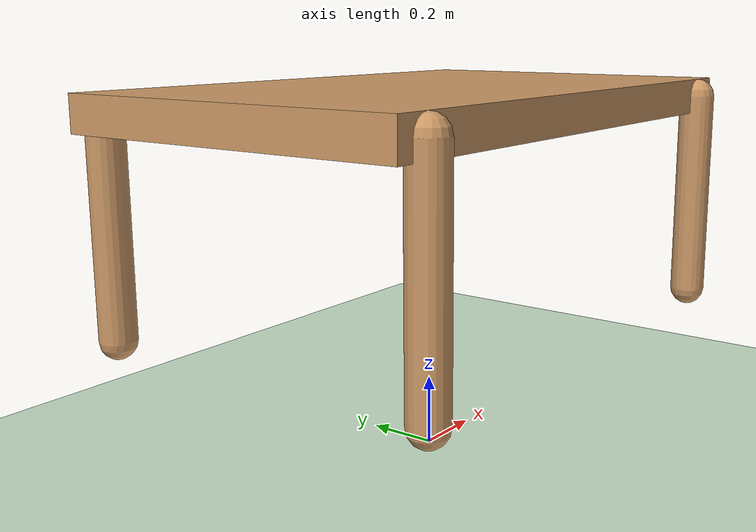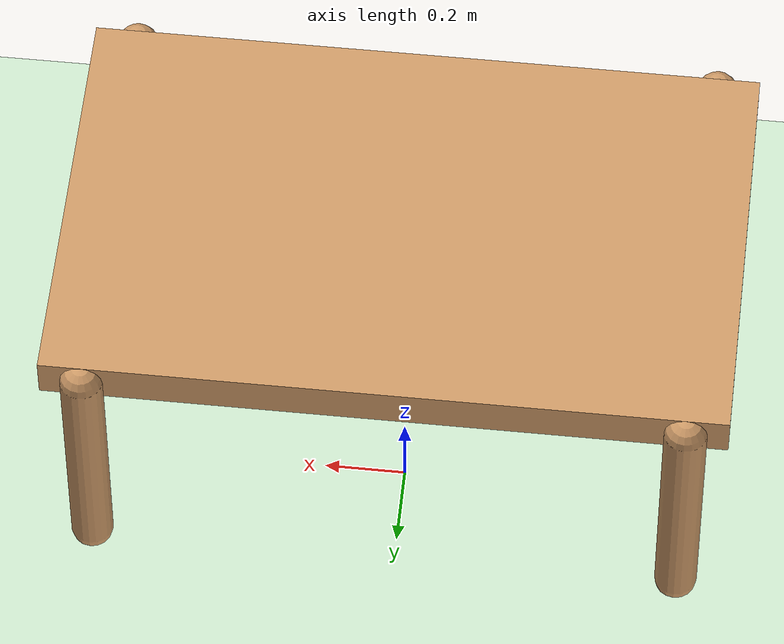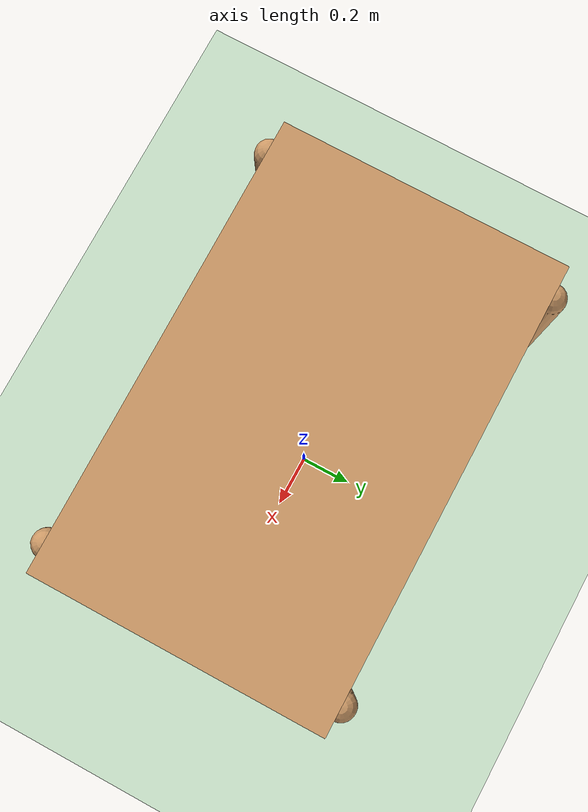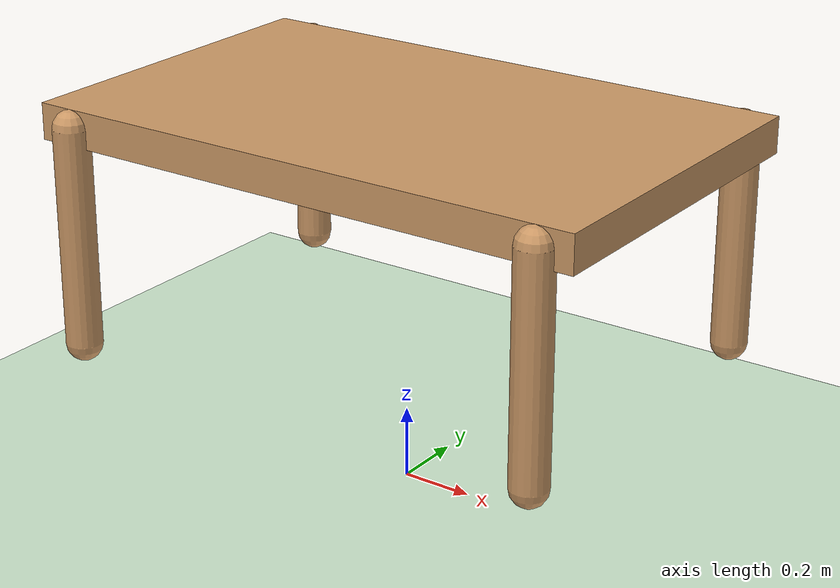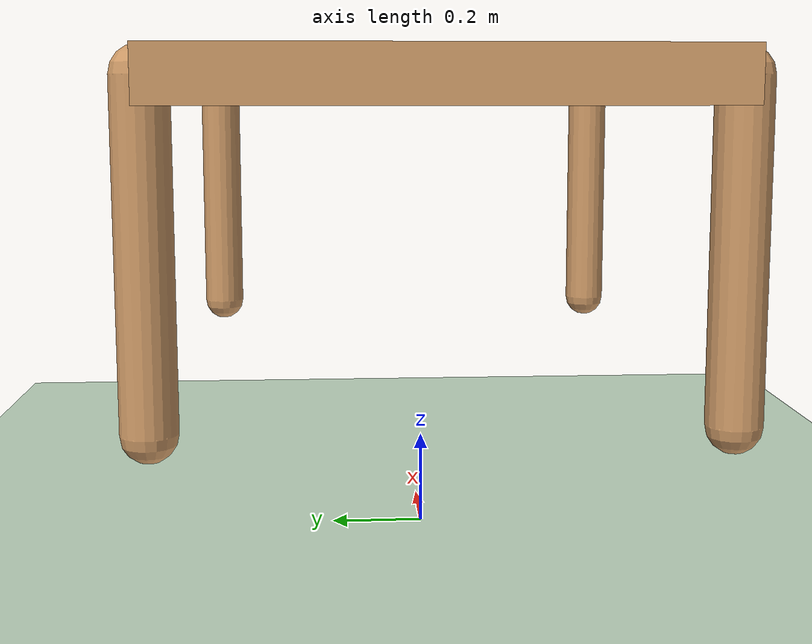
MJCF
<mujoco model="ant">
  <compiler angle="degree" coordinate="local" inertiafromgeom="true"/>
  <option integrator="RK4" timestep="0.01" gravity="0 0 -9.81" />
  <custom>
    <numeric data="0.0 0.0 0.55 1.0 0.0 0.0 0.0 0.0 1.0 0.0 -1.0 0.0 -1.0 0.0 1.0" name="init_qpos"/>
  </custom>
  <default>
    <joint armature="1" damping="1" limited="true"/>
    <geom conaffinity="0" condim="3" density="5.0" friction="1 0.5 0.5" margin="0.01" rgba="0.8 0.6 0.4 1"/>
  </default>
  <asset>
    <texture builtin="gradient" height="100" rgb1="1 1 1" rgb2="0 0 0" type="skybox" width="100"/>
    <texture builtin="flat" height="1278" mark="cross" markrgb="1 1 1" name="texgeom" random="0.01" rgb1="0.8 0.6 0.4" rgb2="0.8 0.6 0.4" type="cube" width="127"/>
    <texture builtin="checker" height="100" name="texplane" rgb1="0 0 0" rgb2="0.8 0.8 0.8" type="2d" width="100"/>
    <material name="MatPlane" reflectance="0.5" shininess="1" specular="1" texrepeat="60 60" texture="texplane"/>
    <material name="geom" texture="texgeom" texuniform="true"/>
  </asset>
  <worldbody>
    <light cutoff="100" diffuse="1 1 1" dir="-0 0 -1.3" directional="true" exponent="1" pos="0 0 1.3" specular=".1 .1 .1"/>
    <geom conaffinity="1" condim="3" material="MatPlane" name="floor" pos="0 0 0" rgba="0.8 0.9 0.8 1" size="40 40 40" type="plane"/>
      <!-- spider body -->
    <body name="spider" pos="0 0 1">
        <camera name="front_cam" pos="0.6 0.0 0.2"  xyaxes="1 0 0 0 0 1" />
        <site name="spider_site" pos="0 0 0" size="0.01" />
        <geom name="spider_geom" type="box" size="0.80 0.50 0.05"/>
        <joint type="free"/>
        <!-- Spider leg: front right corner -->
        <body name="front_right_leg" pos="0.7 0.5 0" euler="0 90 0">
            <joint name="hip_front_right" type="hinge" axis="0 1 0" pos="0 0 0"  range="-90 90"/>
            <geom name="front_right_leg_geom" type="capsule" fromto="0 0 0 0.6 0 0"  size="0.05"/>
        </body>
        <!-- Spider leg: back left corner -->
        <body name="back_right_leg" pos="-0.7 0.5 0" euler="0 90 0">
            <joint name="hip_back_right" type="hinge" axis="0 1 0" pos="0 0 0"  range="-90 90"/>
            <geom name="back_right_leg_geom" type="capsule" fromto="0 0 0 0.6 0 0"  size="0.05"/>
        </body>
                <!-- Spider leg: front right corner -->
        <body name="front_left_leg" pos="0.7 -0.5 0" euler="0 90 0">
            <joint name="hip_front_left" type="hinge" axis="0 1 0" pos="0 0 0"  range="-90 90"/>
            <geom name="front_left_leg_geom" type="capsule" fromto="0 0 0 0.6 0 0"  size="0.05"/>
        </body>
        <!-- Spider leg: back left corner -->
        <body name="back_left_leg" pos="-0.7 -0.5 0" euler="0 90 0">
            <joint name="hip_back_left" type="hinge" axis="0 1 0" pos="0 0 0"  range="-90 90"/>
            <geom name="back_left_leg_geom" type="capsule" fromto="0 0 0 0.6 0 0"  size="0.05"/>
        </body>

    </body>
   </worldbody>
  <actuator>
    <position joint="hip_front_right" kp="20"/>
    <position joint="hip_back_right" kp="20"/>
    <position joint="hip_front_left" kp="20"/>
    <position joint="hip_back_left" kp="20"/>
  </actuator>
  <sensor>
  <framepos objtype="body" objname="spider"/>
  <velocimeter site="spider_site"/>
  <gyro site="spider_site"/>
  </sensor>

</mujoco>
